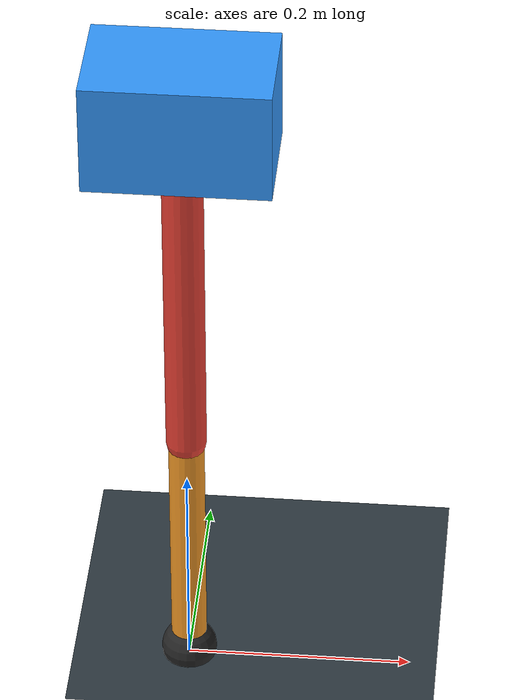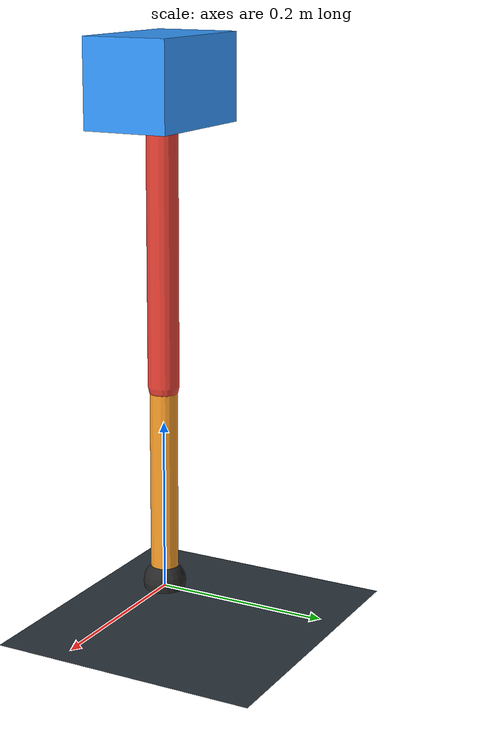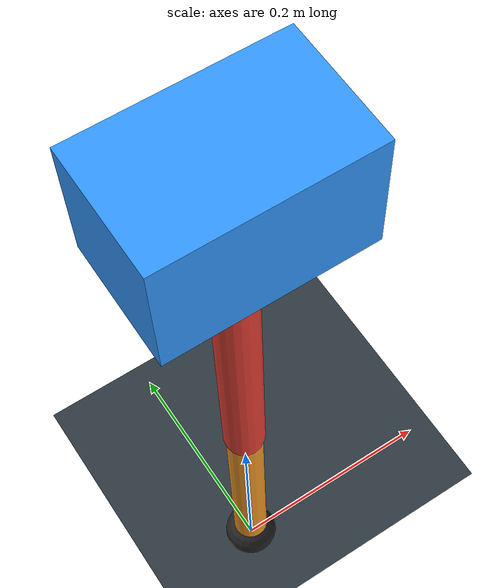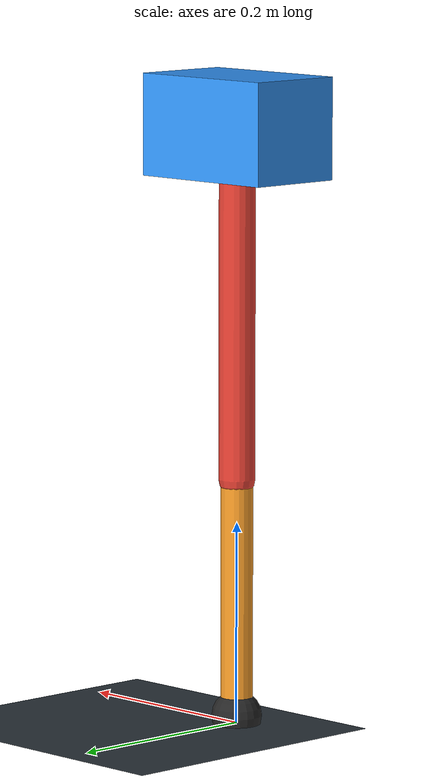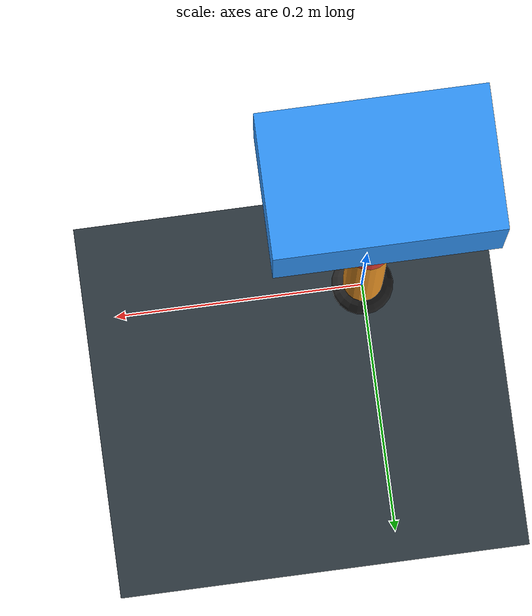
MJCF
<mujoco model="single_axis_two_bar">
  <compiler angle="radian" inertiafromgeom="true"/>
  <option timestep="0.001" integrator="implicitfast" gravity="0 0 -9.81"/>
  <default>
    <joint damping="0.08"/>
    <geom friction="1.2 0.01 0.0001" condim="3"/>
  </default>
  <worldbody>
    <geom name="floor" type="plane" size="5 5 0.1" rgba="0.18 0.22 0.25 1"/>
    <body name="carriage" pos="0 0 0.5898905724124243">
      <joint name="pole_slide" type="slide" axis="0 0 1"/>
      <geom name="payload" type="box" size="0.08 0.05 0.05" mass="2.3430195377349112" rgba="0.2 0.6 1 1"/>
      <body name="thigh" pos="0 0 0">
        <joint name="hip" type="hinge" axis="0 1 0"/>
        <geom name="thigh_link" type="capsule" fromto="0 0 0 0 0 -0.3463178599404331" size="0.018" mass="0.24675605139432824" rgba="0.9 0.25 0.2 1"/>
        <body name="shank" pos="0 0 -0.3463178599404331">
          <joint name="knee" type="hinge" axis="0 1 0"/>
          <geom name="shank_link" type="capsule" fromto="0 0 0 0 0 -0.23604355491773613" size="0.016" mass="0.1681841519192774" rgba="0.95 0.6 0.15 1"/>
          <geom name="foot" type="sphere" pos="0 0 -0.23604355491773613" size="0.025" mass="0.03" rgba="0.15 0.15 0.15 1"/>
          <site name="toe" pos="0 0 -0.23604355491773613" size="0.008"/>
        </body>
      </body>
    </body>
  </worldbody>
  <actuator>
    <motor name="hip_motor" joint="hip" ctrlrange="-32.508136078091276 32.508136078091276"/>
    <motor name="knee_motor" joint="knee" ctrlrange="-104.60367166188232 104.60367166188232"/>
  </actuator>
</mujoco>
